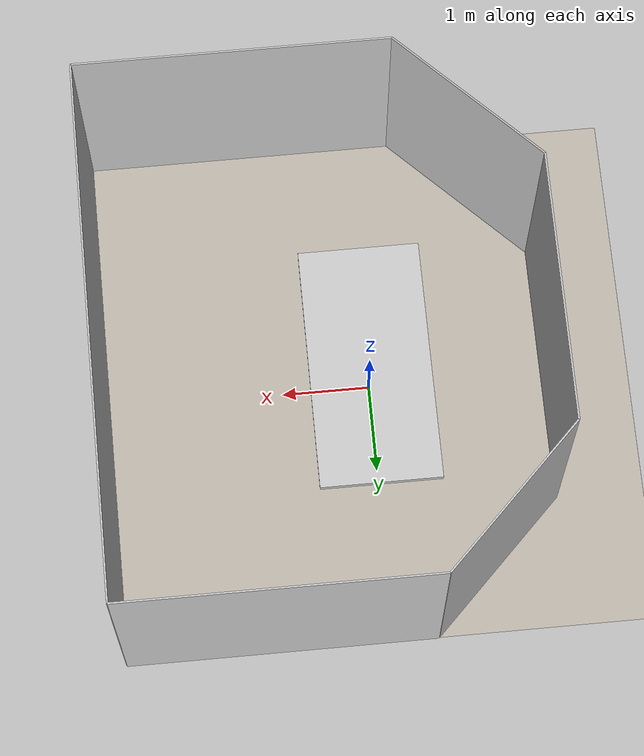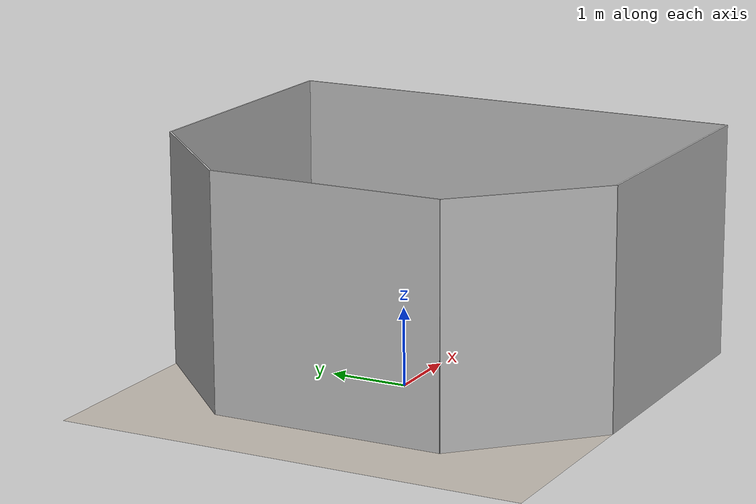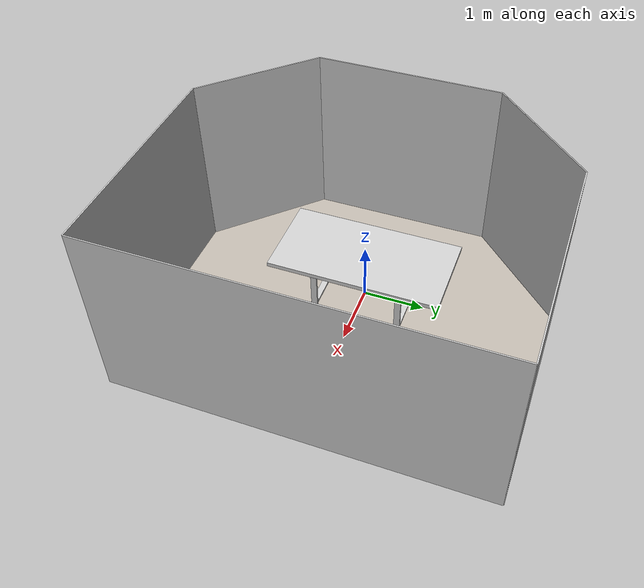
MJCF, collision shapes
<mujoco model="table_arena">
  <asset>
    <texture builtin="gradient" height="256" rgb1=".9 .9 1." rgb2=".2 .3 .4" type="skybox" width="256"/>
    <texture file="../textures/tile_grigia_caldera_porcelain_floor.png" type="2d" name="texplane"/>
    <material name="floorplane" reflectance="0.0" shininess="0.0"
	      specular="0.0" texrepeat="3 3" texture="texplane" texuniform="true"/>
    <!-- ceramic table texture and material-->
    <texture file="../textures/martin_novak_wood_table.png" type="cube" name="tex-table"/>
    <material name="table_texture" reflectance="0.0" shininess="0.0" specular="0.2" texrepeat="1 1" texture="tex-table" />
    <!-- steel legs -->
    <texture file="../textures/martin_novak_wood_table.png" type="cube" name="tex-table-legs"/>
    <material name="table_legs" reflectance="0.8" shininess="0.8" texrepeat="1 1" texture="tex-table-legs" />
    <!-- plaster walls -->
    <texture file="../textures/smooth_light_gray_plaster.png" type="2d" name="tex-wall"/>

    <material name="walls_mat" reflectance="0.0" shininess="0.1" specular="0.8" texrepeat="3 3" texture="tex-wall" texuniform="true" />
    <!-- added table texture and material for domain randomization -->
    <texture  name="textable" builtin="flat" height="512" width="512" rgb1="0.5 0.5 0.5" rgb2="0.5 0.5 0.5"/>
    <material name="table_mat" texture="textable" />

    <texture file="study_wall_painting/study_wall_painting.png" name="tex-study_wall_painting" type="2d"/>
    <material name="study_wall_painting" reflectance="0.5" texrepeat="1 1" texture="tex-study_wall_painting" texuniform="false"/>
    <mesh file="study_wall_painting/visual/study_wall_painting_vis.msh" name="study_wall_painting_vis" scale="1.0 1.0 1.0"/>

    <texture file="office_book_shelf/ceramic.png" name="tex-office_book_shelf" type="2d"/>
    <material name="office_book_shelf" reflectance="0.5" texrepeat="1 1" texture="tex-office_book_shelf" texuniform="false"/>
    <mesh file="office_book_shelf/visual/office_book_shelf_vis.msh" name="office_book_shelf_vis" scale="0.7 0.7 0.7"/>

    <texture file="plant/plant_texture.png" name="tex-plant" type="2d"/>
    <material name="plant" reflectance="0.5" texrepeat="1 1" texture="tex-plant" texuniform="false"/>
    <mesh file="plant/visual/plant_vis.msh" name="plant_vis" scale="0.7 0.7 0.7"/>

    <texture file="black_book/black_book_texture.png" name="tex-black-book" type="2d"/>
    <material name="black_book" reflectance="0.5" texrepeat="1 1" texture="tex-black-book" texuniform="false"/>
    <mesh file="black_book/visual/black_book_vis.msh" name="black_book_vis" scale="0.7 0.7 0.7"/>

    <texture file="desk/desk_texture.png" name="tex-desk" type="2d"/>
    <material name="desk" reflectance="0.5" texrepeat="1 1" texture="tex-desk" texuniform="false"/>
    <mesh file="desk/visual/desk_vis.msh" name="desk_vis" scale="1.0 1.0 1.0"/>

    <texture file="floor_lamp/lamp_texture.png" name="tex-floor_lamp" type="2d"/>
    <material name="floor_lamp" reflectance="0.5" texrepeat="1 1" texture="tex-floor_lamp" texuniform="false"/>
    <mesh file="floor_lamp/visual/floor_lamp_vis.msh" name="floor_lamp_vis" scale="1.0 1.0 1.0"/>

  </asset>
  <worldbody>
    <!-- Floor -->
    <geom condim="3" group="1" material="floorplane" name="floor" pos="0 0 0" size="3 3 .125" type="plane"/>

    <geom pos="-1.9 0.5 1." quat="0.7071068 0 0 -0.7071068" type="mesh" mesh="study_wall_painting_vis" conaffinity="0" contype="0" group="1" name="study_wall_painging" material="study_wall_painting"/>

    <body name="study_table" pos="0 0 0" quat="1 0 0 0">
        <geom solimp="0.998 0.998 0.001" solref="0.001 1" density="100" friction="0.95 0.3 0.1" type="mesh" mesh="desk_vis" conaffinity="0" contype="0" group="1" material="desk"/>
        <geom solimp="0.998 0.998 0.001" solref="0.001 1" density="100" friction="0.95 0.3 0.1" type="box" pos="-0.00000 0.00000 0.84929" quat="0.50000 -0.50000 0.50000 0.50000" size="0.03584 0.68946 1.39273" group="0" rgba="0.8 0.8 0.8 0.3"/>
        <geom solimp="0.998 0.998 0.001" solref="0.001 1" density="100" friction="0.95 0.3 0.1" type="box" pos="-0.50048 -0.69064 0.39431" quat="0.00000 0.00000 1.00000 0.00000" size="0.02002 0.05031 0.39407" group="0" rgba="0.8 0.8 0.8 0.3"/>
        <geom solimp="0.998 0.998 0.001" solref="0.001 1" density="100" friction="0.95 0.3 0.1" type="box" pos="0.49617 -0.69064 0.39431" quat="1.00000 -0.00000 -0.00000 -0.00000" size="0.02002 0.05031 0.39407" group="0" rgba="0.8 0.8 0.8 0.3"/>
        <geom solimp="0.998 0.998 0.001" solref="0.001 1" density="100" friction="0.95 0.3 0.1" type="box" pos="0.49617 0.70968 0.39431" quat="0.00000 0.00000 1.00000 0.00000" size="0.02002 0.05032 0.39407" group="0" rgba="0.8 0.8 0.8 0.3"/>
        <geom solimp="0.998 0.998 0.001" solref="0.001 1" density="100" friction="0.95 0.3 0.1" type="box" pos="-0.50048 0.71473 0.39431" quat="1.00000 -0.00000 -0.00000 -0.00000" size="0.02002 0.05031 0.39407" group="0" rgba="0.8 0.8 0.8 0.3"/>
        <geom solimp="0.998 0.998 0.001" solref="0.001 1" density="100" friction="0.95 0.3 0.1" type="box" pos="-0.00488 0.71473 0.02528" quat="0.70811 0.00000 -0.70610 -0.00000" size="0.02002 0.05031 0.51262" group="0" rgba="0.8 0.8 0.8 0.3"/>
        <geom solimp="0.998 0.998 0.001" solref="0.001 1" density="100" friction="0.95 0.3 0.1" type="box" pos="-0.00488 -0.69765 0.02528" quat="0.70811 0.00000 -0.70610 -0.00000" size="0.02002 0.05032 0.51262" group="0" rgba="0.8 0.8 0.8 0.3"/>
     </body>
    <geom pos="0.3 -0.6 0.9" quat="0.7071068 0 0 -0.7071068" solimp="0.998 0.998 0.001" solref="0.001 1" density="100" friction="0.95 0.3 0.1" type="mesh" mesh="floor_lamp_vis" conaffinity="0" contype="0" group="1" material="floor_lamp"/>

    <geom pos="-1.85 0.5 0" quat="0.7071068 0 0 0.7071068" type="mesh" mesh="plant_vis" conaffinity="0" contype="0" group="1" name="plant" material="plant"/>
    <geom pos="-1.7 -1.0 0" quat="0.7071068 0 0 -0.7071068" type="mesh" mesh="office_book_shelf_vis" conaffinity="0" contype="0" group="1" name="office_book_shelf" material="office_book_shelf"/>

    <geom pos="-1.7 -0.50 0.9" quat="0.7071068 0 0 -0.7071068" type="mesh" mesh="black_book_vis" conaffinity="0" contype="0" group="1" name="black_book_1" material="black_book"/>
    <geom pos="-1.7 -0.45 0.9" quat="0.7071068 0 0 -0.7071068" type="mesh" mesh="black_book_vis" conaffinity="0" contype="0" group="1" name="black_book_2" material="black_book"/>

    <geom pos="-1.25 2.25 1.5" quat="0.6532815 0.6532815 0.2705981 0.2705981" size="1.06 1.5 0.01" type="box" conaffinity="0" contype="0" group="1" name="wall_leftcorner_visual" material="walls_mat"/>
    <geom pos="-1.25 -2.25 1.5" quat="0.6532815 0.6532815 -0.2705981 -0.2705981" size="1.06 1.5 0.01" type="box" conaffinity="0" contype="0" group="1" name="wall_rightcorner_visual" material="walls_mat"/>
    <geom pos="1.25 3 1.5" quat="0.7071 0.7071 0 0" size="1.75 1.5 0.01" type="box" conaffinity="0" contype="0" group="1" name="wall_left_visual" material="walls_mat"/>
    <geom pos="1.25 -3 1.5" quat="0.7071 -0.7071 0 0" size="1.75 1.5 0.01" type="box" conaffinity="0" contype="0" group="1" name="wall_right_visual" material="walls_mat"/>
    <geom pos="-2 0 1.5" quat="0.5 0.5 0.5 0.5" size="1.5 1.5 0.01" type="box" conaffinity="0" contype="0" group="1" name="wall_rear_visual" material="walls_mat"/>
    <geom pos="3 0 1.5" quat="0.5 0.5 -0.5 -0.5" size="3 1.5 0.01" type="box" conaffinity="0" contype="0" group="1" name="wall_front_visual" material="walls_mat"/>

    <light name="light1" diffuse=".8 .8 .8" dir="0 -.15 -1" directional="false" pos="1 1 4.0" specular="0.3 0.3 0.3" castshadow="false"/>
    <light name="light2" diffuse=".8 .8 .8" dir="0 -.15 -1" directional="false" pos="-3. -3. 4.0" specular="0.3 0.3 0.3" castshadow="false"/>

    <!-- front view -->
    <camera mode="fixed" name="frontview" pos="1.0 0 1.45" quat="0.56 0.43 0.43 0.56"/>
    <!-- bird view -->
    <camera mode="fixed" name="birdview" pos="-0.2 0 3.0" quat="0.7071 0 0 0.7071"/>
    <!-- agent view -->
    <camera mode="fixed" name="agentview" pos="0.5 0 1.35" quat="0.653 0.271 0.271 0.653"/>
    <camera mode="fixed" name="agentview_30" pos="1.299 0.75 0.9" quat="0.3966 0.3045 0.5274 0.6869"/>
    <camera mode="fixed" name="agentview_60" pos="0.75 1.299 0.9" quat="0.2053 0.1576 0.5883 0.7661"/>
    <camera mode="fixed" name="agentview_330" pos="1.299 -0.75 0.9" quat="0.6869 0.5274 0.3045 0.3966"/>
    <camera mode="fixed" name="agentview_300" pos="0.75 -1.299 0.9" quat="0.7661 0.5883 0.1576 0.2053"/>
    <camera mode="fixed" name="agentview_120" pos="-0.75 1.299 0.9" quat="-0.2053 -0.1576 0.5883 0.7661"/>
    <camera mode="fixed" name="agentview_240" pos="-0.75 -1.299 0.9" quat="0.7661 0.5883 -0.1576 -0.2053"/>
    <camera mode="fixed" name="agentview_180" pos="-1.5 0.0 0.9" quat="-0.5608 -0.4306 0.4306 0.5608"/>
    <camera mode="fixed" name="agentview_90" pos="-0.75 -1.299 0.9" quat="0.7661 0.5883 -0.1576 -0.2053"/>
    <camera mode="fixed" name="agentview_270" pos="-1.5 0.0 0.9" quat="-0.5608 -0.4306 0.4306 0.5608"/>
    <camera mode="fixed" name="agentview_15" pos="1.299 0.75 0.9" quat="0.3966 0.3045 0.5274 0.6869"/>
    <camera mode="fixed" name="agentview_45" pos="1.299 0.75 0.9" quat="0.3966 0.3045 0.5274 0.6869"/>
    <camera mode="fixed" name="agentview_75" pos="1.299 0.75 0.9" quat="0.3966 0.3045 0.5274 0.6869"/>
    <camera mode="fixed" name="agentview_105" pos="1.299 0.75 0.9" quat="0.3966 0.3045 0.5274 0.6869"/>
    <camera mode="fixed" name="agentview_135" pos="1.299 0.75 0.9" quat="0.3966 0.3045 0.5274 0.6869"/>
    <camera mode="fixed" name="agentview_285" pos="1.299 0.75 0.9" quat="0.3966 0.3045 0.5274 0.6869"/>
    <camera mode="fixed" name="agentview_255" pos="1.299 0.75 0.9" quat="0.3966 0.3045 0.5274 0.6869"/>
    <camera mode="fixed" name="agentview_225" pos="1.299 0.75 0.9" quat="0.3966 0.3045 0.5274 0.6869"/>
    <camera mode="fixed" name="agentview_315" pos="1.299 0.75 0.9" quat="0.3966 0.3045 0.5274 0.6869"/>
    <camera mode="fixed" name="agentview_345" pos="1.299 0.75 0.9" quat="0.3966 0.3045 0.5274 0.6869"/>

    <camera mode="fixed" name="agentview_up_15_30" pos="1.299 0.75 0.9" quat="0.3966 0.3045 0.5274 0.6869"/>
    <camera mode="fixed" name="agentview_up_15_60" pos="0.75 1.299 0.9" quat="0.2053 0.1576 0.5883 0.7661"/>
    <camera mode="fixed" name="agentview_up_15_330" pos="1.299 -0.75 0.9" quat="0.6869 0.5274 0.3045 0.3966"/>
    <camera mode="fixed" name="agentview_up_15_300" pos="0.75 -1.299 0.9" quat="0.7661 0.5883 0.1576 0.2053"/>
    <camera mode="fixed" name="agentview_up_15_120" pos="-0.75 1.299 0.9" quat="-0.2053 -0.1576 0.5883 0.7661"/>
    <camera mode="fixed" name="agentview_up_15_240" pos="-0.75 -1.299 0.9" quat="0.7661 0.5883 -0.1576 -0.2053"/>
    <camera mode="fixed" name="agentview_up_15_180" pos="-1.5 0.0 0.9" quat="-0.5608 -0.4306 0.4306 0.5608"/>
    <camera mode="fixed" name="agentview_up_30_30" pos="1.299 0.75 0.9" quat="0.3966 0.3045 0.5274 0.6869"/>
    <camera mode="fixed" name="agentview_up_30_60" pos="0.75 1.299 0.9" quat="0.2053 0.1576 0.5883 0.7661"/>
    <camera mode="fixed" name="agentview_up_30_330" pos="1.299 -0.75 0.9" quat="0.6869 0.5274 0.3045 0.3966"/>
    <camera mode="fixed" name="agentview_up_30_300" pos="0.75 -1.299 0.9" quat="0.7661 0.5883 0.1576 0.2053"/>
    <camera mode="fixed" name="agentview_up_30_120" pos="-0.75 1.299 0.9" quat="-0.2053 -0.1576 0.5883 0.7661"/>
    <camera mode="fixed" name="agentview_up_30_240" pos="-0.75 -1.299 0.9" quat="0.7661 0.5883 -0.1576 -0.2053"/>
    <camera mode="fixed" name="agentview_up_30_180" pos="-1.5 0.0 0.9" quat="-0.5608 -0.4306 0.4306 0.5608"/>
    <camera mode="fixed" name="agentview_up_345_30" pos="1.299 0.75 0.9" quat="0.3966 0.3045 0.5274 0.6869"/>
    <camera mode="fixed" name="agentview_up_345_60" pos="0.75 1.299 0.9" quat="0.2053 0.1576 0.5883 0.7661"/>
    <camera mode="fixed" name="agentview_up_345_330" pos="1.299 -0.75 0.9" quat="0.6869 0.5274 0.3045 0.3966"/>
    <camera mode="fixed" name="agentview_up_345_300" pos="0.75 -1.299 0.9" quat="0.7661 0.5883 0.1576 0.2053"/>
    <camera mode="fixed" name="agentview_up_345_120" pos="-0.75 1.299 0.9" quat="-0.2053 -0.1576 0.5883 0.7661"/>
    <camera mode="fixed" name="agentview_up_345_240" pos="-0.75 -1.299 0.9" quat="0.7661 0.5883 -0.1576 -0.2053"/>
    <camera mode="fixed" name="agentview_up_345_180" pos="-1.5 0.0 0.9" quat="-0.5608 -0.4306 0.4306 0.5608"/>
    <camera mode="fixed" name="agentview_up_15" pos="0.5 0 1.35" quat="0.653 0.271 0.271 0.653"/>
    <camera mode="fixed" name="agentview_up_30" pos="0.5 0 1.35" quat="0.653 0.271 0.271 0.653"/>
    <camera mode="fixed" name="agentview_up_345" pos="0.5 0 1.35" quat="0.653 0.271 0.271 0.653"/>

    <!-- side view -->
    <camera mode="fixed" name="sideview" pos="-0.05651774593317116 1.2761224129427358 1.4879572214102434" quat="0.009905065491771751 0.006877963156909582 0.5912228352893879 0.806418094001364" />
  </worldbody>
</mujoco>
